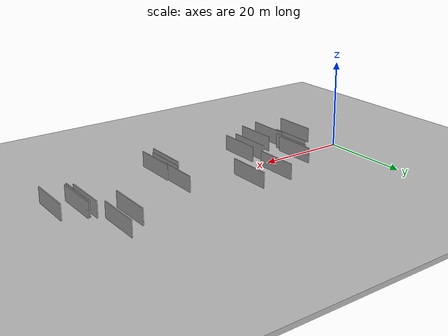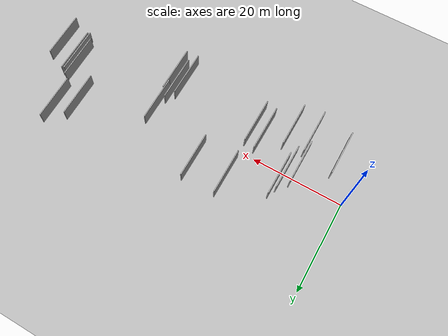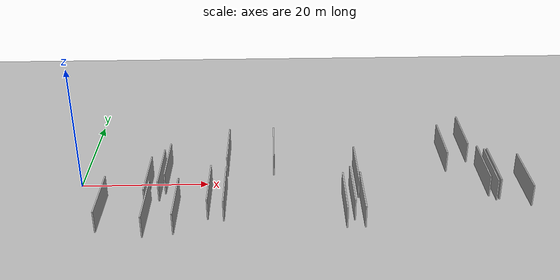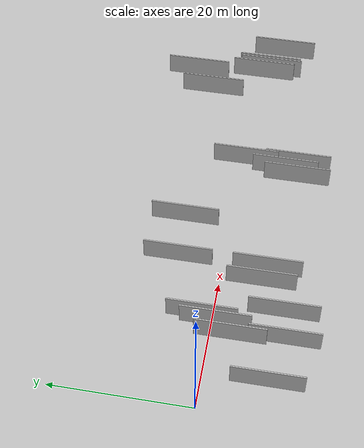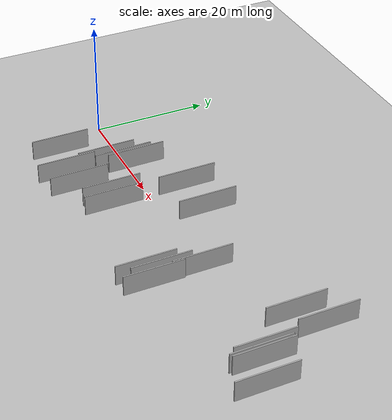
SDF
<?xml version="1.0" encoding="utf-8"?>

<sdf version="1.6">

   <world name="default">

      <gui fullscreen="0">

         <camera name="user_camera">

            <pose>-15 0 4.57585 0 0 0</pose>

            <view_controller>orbit</view_controller>

         </camera>

      </gui>

      <scene>

         <sky>

           <clouds>

             <speed>12</speed>

           </clouds>

         </sky>

         <ambient>0.4 0.4 0.4 1</ambient>

         <background>0.7 0.7 0.7 1</background>

         <shadows>1</shadows>

      </scene>

      <gravity>0 0 -9.8066</gravity>

      <magnetic_field>6e-06 2.3e-05 -4.2e-05</magnetic_field>

      <physics default="0" name="default_physics" type="ode">

         <ode>

            <solver>

               <type>quick</type>

               <iters>10</iters>

               <sor>1.0</sor>

               <use_dynamic_moi_rescaling>0</use_dynamic_moi_rescaling>

            </solver>

            <constraints>

               <cfm>0</cfm>

               <erp>0.2</erp>

               <contact_max_correcting_vel>100</contact_max_correcting_vel>

               <contact_surface_layer>0.001</contact_surface_layer>

            </constraints>

         </ode>

         <max_step_size>0.004</max_step_size>

         <real_time_factor>1</real_time_factor>

         <real_time_update_rate>250</real_time_update_rate>

      </physics>

      <light name="sun" type="directional">

         <cast_shadows>1</cast_shadows>

         <pose>0 0 10 0 0 0</pose>

         <diffuse>0.8 0.8 0.8 1</diffuse>

         <specular>0.2 0.2 0.2 1</specular>

         <attenuation>

            <range>1000</range>

            <constant>0.9</constant>

            <linear>0.01</linear>

            <quadratic>0.001</quadratic>

         </attenuation>

         <direction>-0.5 0.1 -0.9</direction>

      </light>

      <include>

         <name>ground_plane_1</name>

         <uri>model://HANNAS_ground_plane</uri>

         <pose>0 0 0  0 0 0</pose>

      </include>

      <include>

         <name>ground_plane_2</name>

         <uri>model://HANNAS_ground_plane</uri>

         <pose>100 0 0  0 0 0</pose>

      </include>

      <model name="HANNAS_wall_1">

         <static>1</static>

         <pose frame="">23.0872 6.4572 0.0 0.000000 0.000000 1.570796</pose>

         <link name="link">

            <pose frame="">0 0 2.00 0 0 0</pose>

            <collision name="collision">

               <geometry>

                  <box>

                     <size>10.00 0.2 4.00</size>

                  </box>

               </geometry>

               <max_contacts>10</max_contacts>

               <surface>

                  <contact>

                     <ode/>

                  </contact>

                  <bounce/>

                  <friction>

                     <torsional>

                        <ode/>

                     </torsional>

                     <ode/>

                  </friction>

               </surface>

            </collision>

            <visual name="visual">

               <cast_shadows>0</cast_shadows>

               <geometry>

                  <box>

                     <size>10.00 0.2 4.00</size>

                  </box>

               </geometry>

               <material>

                  <script>

                     <uri>model://HANNAS_wall/materials/scripts</uri>

                     <uri>model://HANNAS_wall/materials/textures</uri>

                     <name>vrc/HANNAS_wall</name>

                  </script>

               </material>

            </visual>

            <self_collide>0</self_collide>

            <enable_wind>0</enable_wind>

            <kinematic>0</kinematic>

         </link>

      </model>

      <model name="HANNAS_wall_2">

         <static>1</static>

         <pose frame="">58.5784 7.0230 0.0 0.000000 0.000000 1.570796</pose>

         <link name="link">

            <pose frame="">0 0 2.00 0 0 0</pose>

            <collision name="collision">

               <geometry>

                  <box>

                     <size>10.00 0.2 4.00</size>

                  </box>

               </geometry>

               <max_contacts>10</max_contacts>

               <surface>

                  <contact>

                     <ode/>

                  </contact>

                  <bounce/>

                  <friction>

                     <torsional>

                        <ode/>

                     </torsional>

                     <ode/>

                  </friction>

               </surface>

            </collision>

            <visual name="visual">

               <cast_shadows>0</cast_shadows>

               <geometry>

                  <box>

                     <size>10.00 0.2 4.00</size>

                  </box>

               </geometry>

               <material>

                  <script>

                     <uri>model://HANNAS_wall/materials/scripts</uri>

                     <uri>model://HANNAS_wall/materials/textures</uri>

                     <name>vrc/HANNAS_wall</name>

                  </script>

               </material>

            </visual>

            <self_collide>0</self_collide>

            <enable_wind>0</enable_wind>

            <kinematic>0</kinematic>

         </link>

      </model>

      <model name="HANNAS_wall_3">

         <static>1</static>

         <pose frame="">43.8865 -8.5590 0.0 0.000000 0.000000 1.570796</pose>

         <link name="link">

            <pose frame="">0 0 2.00 0 0 0</pose>

            <collision name="collision">

               <geometry>

                  <box>

                     <size>10.00 0.2 4.00</size>

                  </box>

               </geometry>

               <max_contacts>10</max_contacts>

               <surface>

                  <contact>

                     <ode/>

                  </contact>

                  <bounce/>

                  <friction>

                     <torsional>

                        <ode/>

                     </torsional>

                     <ode/>

                  </friction>

               </surface>

            </collision>

            <visual name="visual">

               <cast_shadows>0</cast_shadows>

               <geometry>

                  <box>

                     <size>10.00 0.2 4.00</size>

                  </box>

               </geometry>

               <material>

                  <script>

                     <uri>model://HANNAS_wall/materials/scripts</uri>

                     <uri>model://HANNAS_wall/materials/textures</uri>

                     <name>vrc/HANNAS_wall</name>

                  </script>

               </material>

            </visual>

            <self_collide>0</self_collide>

            <enable_wind>0</enable_wind>

            <kinematic>0</kinematic>

         </link>

      </model>

      <model name="HANNAS_wall_4">

         <static>1</static>

         <pose frame="">64.7438 -1.8446 0.0 0.000000 0.000000 1.570796</pose>

         <link name="link">

            <pose frame="">0 0 2.00 0 0 0</pose>

            <collision name="collision">

               <geometry>

                  <box>

                     <size>10.00 0.2 4.00</size>

                  </box>

               </geometry>

               <max_contacts>10</max_contacts>

               <surface>

                  <contact>

                     <ode/>

                  </contact>

                  <bounce/>

                  <friction>

                     <torsional>

                        <ode/>

                     </torsional>

                     <ode/>

                  </friction>

               </surface>

            </collision>

            <visual name="visual">

               <cast_shadows>0</cast_shadows>

               <geometry>

                  <box>

                     <size>10.00 0.2 4.00</size>

                  </box>

               </geometry>

               <material>

                  <script>

                     <uri>model://HANNAS_wall/materials/scripts</uri>

                     <uri>model://HANNAS_wall/materials/textures</uri>

                     <name>vrc/HANNAS_wall</name>

                  </script>

               </material>

            </visual>

            <self_collide>0</self_collide>

            <enable_wind>0</enable_wind>

            <kinematic>0</kinematic>

         </link>

      </model>

      <model name="HANNAS_wall_5">

         <static>1</static>

         <pose frame="">11.6194 -10.2387 0.0 0.000000 0.000000 1.570796</pose>

         <link name="link">

            <pose frame="">0 0 2.00 0 0 0</pose>

            <collision name="collision">

               <geometry>

                  <box>

                     <size>10.00 0.2 4.00</size>

                  </box>

               </geometry>

               <max_contacts>10</max_contacts>

               <surface>

                  <contact>

                     <ode/>

                  </contact>

                  <bounce/>

                  <friction>

                     <torsional>

                        <ode/>

                     </torsional>

                     <ode/>

                  </friction>

               </surface>

            </collision>

            <visual name="visual">

               <cast_shadows>0</cast_shadows>

               <geometry>

                  <box>

                     <size>10.00 0.2 4.00</size>

                  </box>

               </geometry>

               <material>

                  <script>

                     <uri>model://HANNAS_wall/materials/scripts</uri>

                     <uri>model://HANNAS_wall/materials/textures</uri>

                     <name>vrc/HANNAS_wall</name>

                  </script>

               </material>

            </visual>

            <self_collide>0</self_collide>

            <enable_wind>0</enable_wind>

            <kinematic>0</kinematic>

         </link>

      </model>

      <model name="HANNAS_wall_6">

         <static>1</static>

         <pose frame="">41.1895 -8.6862 0.0 0.000000 0.000000 1.570796</pose>

         <link name="link">

            <pose frame="">0 0 2.00 0 0 0</pose>

            <collision name="collision">

               <geometry>

                  <box>

                     <size>10.00 0.2 4.00</size>

                  </box>

               </geometry>

               <max_contacts>10</max_contacts>

               <surface>

                  <contact>

                     <ode/>

                  </contact>

                  <bounce/>

                  <friction>

                     <torsional>

                        <ode/>

                     </torsional>

                     <ode/>

                  </friction>

               </surface>

            </collision>

            <visual name="visual">

               <cast_shadows>0</cast_shadows>

               <geometry>

                  <box>

                     <size>10.00 0.2 4.00</size>

                  </box>

               </geometry>

               <material>

                  <script>

                     <uri>model://HANNAS_wall/materials/scripts</uri>

                     <uri>model://HANNAS_wall/materials/textures</uri>

                     <name>vrc/HANNAS_wall</name>

                  </script>

               </material>

            </visual>

            <self_collide>0</self_collide>

            <enable_wind>0</enable_wind>

            <kinematic>0</kinematic>

         </link>

      </model>

      <model name="HANNAS_wall_7">

         <static>1</static>

         <pose frame="">11.0862 -2.8782 0.0 0.000000 0.000000 1.570796</pose>

         <link name="link">

            <pose frame="">0 0 2.00 0 0 0</pose>

            <collision name="collision">

               <geometry>

                  <box>

                     <size>10.00 0.2 4.00</size>

                  </box>

               </geometry>

               <max_contacts>10</max_contacts>

               <surface>

                  <contact>

                     <ode/>

                  </contact>

                  <bounce/>

                  <friction>

                     <torsional>

                        <ode/>

                     </torsional>

                     <ode/>

                  </friction>

               </surface>

            </collision>

            <visual name="visual">

               <cast_shadows>0</cast_shadows>

               <geometry>

                  <box>

                     <size>10.00 0.2 4.00</size>

                  </box>

               </geometry>

               <material>

                  <script>

                     <uri>model://HANNAS_wall/materials/scripts</uri>

                     <uri>model://HANNAS_wall/materials/textures</uri>

                     <name>vrc/HANNAS_wall</name>

                  </script>

               </material>

            </visual>

            <self_collide>0</self_collide>

            <enable_wind>0</enable_wind>

            <kinematic>0</kinematic>

         </link>

      </model>

      <model name="HANNAS_wall_8">

         <static>1</static>

         <pose frame="">69.6806 -3.5806 0.0 0.000000 0.000000 1.570796</pose>

         <link name="link">

            <pose frame="">0 0 2.00 0 0 0</pose>

            <collision name="collision">

               <geometry>

                  <box>

                     <size>10.00 0.2 4.00</size>

                  </box>

               </geometry>

               <max_contacts>10</max_contacts>

               <surface>

                  <contact>

                     <ode/>

                  </contact>

                  <bounce/>

                  <friction>

                     <torsional>

                        <ode/>

                     </torsional>

                     <ode/>

                  </friction>

               </surface>

            </collision>

            <visual name="visual">

               <cast_shadows>0</cast_shadows>

               <geometry>

                  <box>

                     <size>10.00 0.2 4.00</size>

                  </box>

               </geometry>

               <material>

                  <script>

                     <uri>model://HANNAS_wall/materials/scripts</uri>

                     <uri>model://HANNAS_wall/materials/textures</uri>

                     <name>vrc/HANNAS_wall</name>

                  </script>

               </material>

            </visual>

            <self_collide>0</self_collide>

            <enable_wind>0</enable_wind>

            <kinematic>0</kinematic>

         </link>

      </model>

      <model name="HANNAS_wall_9">

         <static>1</static>

         <pose frame="">63.8043 -0.7299 0.0 0.000000 0.000000 1.570796</pose>

         <link name="link">

            <pose frame="">0 0 2.00 0 0 0</pose>

            <collision name="collision">

               <geometry>

                  <box>

                     <size>10.00 0.2 4.00</size>

                  </box>

               </geometry>

               <max_contacts>10</max_contacts>

               <surface>

                  <contact>

                     <ode/>

                  </contact>

                  <bounce/>

                  <friction>

                     <torsional>

                        <ode/>

                     </torsional>

                     <ode/>

                  </friction>

               </surface>

            </collision>

            <visual name="visual">

               <cast_shadows>0</cast_shadows>

               <geometry>

                  <box>

                     <size>10.00 0.2 4.00</size>

                  </box>

               </geometry>

               <material>

                  <script>

                     <uri>model://HANNAS_wall/materials/scripts</uri>

                     <uri>model://HANNAS_wall/materials/textures</uri>

                     <name>vrc/HANNAS_wall</name>

                  </script>

               </material>

            </visual>

            <self_collide>0</self_collide>

            <enable_wind>0</enable_wind>

            <kinematic>0</kinematic>

         </link>

      </model>

      <model name="HANNAS_wall_10">

         <static>1</static>

         <pose frame="">20.7131 -5.8970 0.0 0.000000 0.000000 1.570796</pose>

         <link name="link">

            <pose frame="">0 0 2.00 0 0 0</pose>

            <collision name="collision">

               <geometry>

                  <box>

                     <size>10.00 0.2 4.00</size>

                  </box>

               </geometry>

               <max_contacts>10</max_contacts>

               <surface>

                  <contact>

                     <ode/>

                  </contact>

                  <bounce/>

                  <friction>

                     <torsional>

                        <ode/>

                     </torsional>

                     <ode/>

                  </friction>

               </surface>

            </collision>

            <visual name="visual">

               <cast_shadows>0</cast_shadows>

               <geometry>

                  <box>

                     <size>10.00 0.2 4.00</size>

                  </box>

               </geometry>

               <material>

                  <script>

                     <uri>model://HANNAS_wall/materials/scripts</uri>

                     <uri>model://HANNAS_wall/materials/textures</uri>

                     <name>vrc/HANNAS_wall</name>

                  </script>

               </material>

            </visual>

            <self_collide>0</self_collide>

            <enable_wind>0</enable_wind>

            <kinematic>0</kinematic>

         </link>

      </model>

      <model name="HANNAS_wall_11">

         <static>1</static>

         <pose frame="">13.6927 1.4413 0.0 0.000000 0.000000 1.570796</pose>

         <link name="link">

            <pose frame="">0 0 2.00 0 0 0</pose>

            <collision name="collision">

               <geometry>

                  <box>

                     <size>10.00 0.2 4.00</size>

                  </box>

               </geometry>

               <max_contacts>10</max_contacts>

               <surface>

                  <contact>

                     <ode/>

                  </contact>

                  <bounce/>

                  <friction>

                     <torsional>

                        <ode/>

                     </torsional>

                     <ode/>

                  </friction>

               </surface>

            </collision>

            <visual name="visual">

               <cast_shadows>0</cast_shadows>

               <geometry>

                  <box>

                     <size>10.00 0.2 4.00</size>

                  </box>

               </geometry>

               <material>

                  <script>

                     <uri>model://HANNAS_wall/materials/scripts</uri>

                     <uri>model://HANNAS_wall/materials/textures</uri>

                     <name>vrc/HANNAS_wall</name>

                  </script>

               </material>

            </visual>

            <self_collide>0</self_collide>

            <enable_wind>0</enable_wind>

            <kinematic>0</kinematic>

         </link>

      </model>

      <model name="HANNAS_wall_12">

         <static>1</static>

         <pose frame="">15.9839 -9.6368 0.0 0.000000 0.000000 1.570796</pose>

         <link name="link">

            <pose frame="">0 0 2.00 0 0 0</pose>

            <collision name="collision">

               <geometry>

                  <box>

                     <size>10.00 0.2 4.00</size>

                  </box>

               </geometry>

               <max_contacts>10</max_contacts>

               <surface>

                  <contact>

                     <ode/>

                  </contact>

                  <bounce/>

                  <friction>

                     <torsional>

                        <ode/>

                     </torsional>

                     <ode/>

                  </friction>

               </surface>

            </collision>

            <visual name="visual">

               <cast_shadows>0</cast_shadows>

               <geometry>

                  <box>

                     <size>10.00 0.2 4.00</size>

                  </box>

               </geometry>

               <material>

                  <script>

                     <uri>model://HANNAS_wall/materials/scripts</uri>

                     <uri>model://HANNAS_wall/materials/textures</uri>

                     <name>vrc/HANNAS_wall</name>

                  </script>

               </material>

            </visual>

            <self_collide>0</self_collide>

            <enable_wind>0</enable_wind>

            <kinematic>0</kinematic>

         </link>

      </model>

      <model name="HANNAS_wall_13">

         <static>1</static>

         <pose frame="">23.1178 -6.4485 0.0 0.000000 0.000000 1.570796</pose>

         <link name="link">

            <pose frame="">0 0 2.00 0 0 0</pose>

            <collision name="collision">

               <geometry>

                  <box>

                     <size>10.00 0.2 4.00</size>

                  </box>

               </geometry>

               <max_contacts>10</max_contacts>

               <surface>

                  <contact>

                     <ode/>

                  </contact>

                  <bounce/>

                  <friction>

                     <torsional>

                        <ode/>

                     </torsional>

                     <ode/>

                  </friction>

               </surface>

            </collision>

            <visual name="visual">

               <cast_shadows>0</cast_shadows>

               <geometry>

                  <box>

                     <size>10.00 0.2 4.00</size>

                  </box>

               </geometry>

               <material>

                  <script>

                     <uri>model://HANNAS_wall/materials/scripts</uri>

                     <uri>model://HANNAS_wall/materials/textures</uri>

                     <name>vrc/HANNAS_wall</name>

                  </script>

               </material>

            </visual>

            <self_collide>0</self_collide>

            <enable_wind>0</enable_wind>

            <kinematic>0</kinematic>

         </link>

      </model>

      <model name="HANNAS_wall_14">

         <static>1</static>

         <pose frame="">43.5943 -0.5229 0.0 0.000000 0.000000 1.570796</pose>

         <link name="link">

            <pose frame="">0 0 2.00 0 0 0</pose>

            <collision name="collision">

               <geometry>

                  <box>

                     <size>10.00 0.2 4.00</size>

                  </box>

               </geometry>

               <max_contacts>10</max_contacts>

               <surface>

                  <contact>

                     <ode/>

                  </contact>

                  <bounce/>

                  <friction>

                     <torsional>

                        <ode/>

                     </torsional>

                     <ode/>

                  </friction>

               </surface>

            </collision>

            <visual name="visual">

               <cast_shadows>0</cast_shadows>

               <geometry>

                  <box>

                     <size>10.00 0.2 4.00</size>

                  </box>

               </geometry>

               <material>

                  <script>

                     <uri>model://HANNAS_wall/materials/scripts</uri>

                     <uri>model://HANNAS_wall/materials/textures</uri>

                     <name>vrc/HANNAS_wall</name>

                  </script>

               </material>

            </visual>

            <self_collide>0</self_collide>

            <enable_wind>0</enable_wind>

            <kinematic>0</kinematic>

         </link>

      </model>

      <model name="HANNAS_wall_15">

         <static>1</static>

         <pose frame="">65.2399 -1.6350 0.0 0.000000 0.000000 1.570796</pose>

         <link name="link">

            <pose frame="">0 0 2.00 0 0 0</pose>

            <collision name="collision">

               <geometry>

                  <box>

                     <size>10.00 0.2 4.00</size>

                  </box>

               </geometry>

               <max_contacts>10</max_contacts>

               <surface>

                  <contact>

                     <ode/>

                  </contact>

                  <bounce/>

                  <friction>

                     <torsional>

                        <ode/>

                     </torsional>

                     <ode/>

                  </friction>

               </surface>

            </collision>

            <visual name="visual">

               <cast_shadows>0</cast_shadows>

               <geometry>

                  <box>

                     <size>10.00 0.2 4.00</size>

                  </box>

               </geometry>

               <material>

                  <script>

                     <uri>model://HANNAS_wall/materials/scripts</uri>

                     <uri>model://HANNAS_wall/materials/textures</uri>

                     <name>vrc/HANNAS_wall</name>

                  </script>

               </material>

            </visual>

            <self_collide>0</self_collide>

            <enable_wind>0</enable_wind>

            <kinematic>0</kinematic>

         </link>

      </model>

      <model name="HANNAS_wall_16">

         <static>1</static>

         <pose frame="">4.6838 -8.7929 0.0 0.000000 0.000000 1.570796</pose>

         <link name="link">

            <pose frame="">0 0 2.00 0 0 0</pose>

            <collision name="collision">

               <geometry>

                  <box>

                     <size>10.00 0.2 4.00</size>

                  </box>

               </geometry>

               <max_contacts>10</max_contacts>

               <surface>

                  <contact>

                     <ode/>

                  </contact>

                  <bounce/>

                  <friction>

                     <torsional>

                        <ode/>

                     </torsional>

                     <ode/>

                  </friction>

               </surface>

            </collision>

            <visual name="visual">

               <cast_shadows>0</cast_shadows>

               <geometry>

                  <box>

                     <size>10.00 0.2 4.00</size>

                  </box>

               </geometry>

               <material>

                  <script>

                     <uri>model://HANNAS_wall/materials/scripts</uri>

                     <uri>model://HANNAS_wall/materials/textures</uri>

                     <name>vrc/HANNAS_wall</name>

                  </script>

               </material>

            </visual>

            <self_collide>0</self_collide>

            <enable_wind>0</enable_wind>

            <kinematic>0</kinematic>

         </link>

      </model>

      <model name="HANNAS_wall_17">

         <static>1</static>

         <pose frame="">12.9128 -0.5733 0.0 0.000000 0.000000 1.570796</pose>

         <link name="link">

            <pose frame="">0 0 2.00 0 0 0</pose>

            <collision name="collision">

               <geometry>

                  <box>

                     <size>10.00 0.2 4.00</size>

                  </box>

               </geometry>

               <max_contacts>10</max_contacts>

               <surface>

                  <contact>

                     <ode/>

                  </contact>

                  <bounce/>

                  <friction>

                     <torsional>

                        <ode/>

                     </torsional>

                     <ode/>

                  </friction>

               </surface>

            </collision>

            <visual name="visual">

               <cast_shadows>0</cast_shadows>

               <geometry>

                  <box>

                     <size>10.00 0.2 4.00</size>

                  </box>

               </geometry>

               <material>

                  <script>

                     <uri>model://HANNAS_wall/materials/scripts</uri>

                     <uri>model://HANNAS_wall/materials/textures</uri>

                     <name>vrc/HANNAS_wall</name>

                  </script>

               </material>

            </visual>

            <self_collide>0</self_collide>

            <enable_wind>0</enable_wind>

            <kinematic>0</kinematic>

         </link>

      </model>

      <model name="HANNAS_wall_18">

         <static>1</static>

         <pose frame="">30.5275 6.7041 0.0 0.000000 0.000000 1.570796</pose>

         <link name="link">

            <pose frame="">0 0 2.00 0 0 0</pose>

            <collision name="collision">

               <geometry>

                  <box>

                     <size>10.00 0.2 4.00</size>

                  </box>

               </geometry>

               <max_contacts>10</max_contacts>

               <surface>

                  <contact>

                     <ode/>

                  </contact>

                  <bounce/>

                  <friction>

                     <torsional>

                        <ode/>

                     </torsional>

                     <ode/>

                  </friction>

               </surface>

            </collision>

            <visual name="visual">

               <cast_shadows>0</cast_shadows>

               <geometry>

                  <box>

                     <size>10.00 0.2 4.00</size>

                  </box>

               </geometry>

               <material>

                  <script>

                     <uri>model://HANNAS_wall/materials/scripts</uri>

                     <uri>model://HANNAS_wall/materials/textures</uri>

                     <name>vrc/HANNAS_wall</name>

                  </script>

               </material>

            </visual>

            <self_collide>0</self_collide>

            <enable_wind>0</enable_wind>

            <kinematic>0</kinematic>

         </link>

      </model>

      <model name="HANNAS_wall_19">

         <static>1</static>

         <pose frame="">42.4820 -6.7375 0.0 0.000000 0.000000 1.570796</pose>

         <link name="link">

            <pose frame="">0 0 2.00 0 0 0</pose>

            <collision name="collision">

               <geometry>

                  <box>

                     <size>10.00 0.2 4.00</size>

                  </box>

               </geometry>

               <max_contacts>10</max_contacts>

               <surface>

                  <contact>

                     <ode/>

                  </contact>

                  <bounce/>

                  <friction>

                     <torsional>

                        <ode/>

                     </torsional>

                     <ode/>

                  </friction>

               </surface>

            </collision>

            <visual name="visual">

               <cast_shadows>0</cast_shadows>

               <geometry>

                  <box>

                     <size>10.00 0.2 4.00</size>

                  </box>

               </geometry>

               <material>

                  <script>

                     <uri>model://HANNAS_wall/materials/scripts</uri>

                     <uri>model://HANNAS_wall/materials/textures</uri>

                     <name>vrc/HANNAS_wall</name>

                  </script>

               </material>

            </visual>

            <self_collide>0</self_collide>

            <enable_wind>0</enable_wind>

            <kinematic>0</kinematic>

         </link>

      </model>

      <model name="HANNAS_wall_20">

         <static>1</static>

         <pose frame="">62.5171 10.0142 0.0 0.000000 0.000000 1.570796</pose>

         <link name="link">

            <pose frame="">0 0 2.00 0 0 0</pose>

            <collision name="collision">

               <geometry>

                  <box>

                     <size>10.00 0.2 4.00</size>

                  </box>

               </geometry>

               <max_contacts>10</max_contacts>

               <surface>

                  <contact>

                     <ode/>

                  </contact>

                  <bounce/>

                  <friction>

                     <torsional>

                        <ode/>

                     </torsional>

                     <ode/>

                  </friction>

               </surface>

            </collision>

            <visual name="visual">

               <cast_shadows>0</cast_shadows>

               <geometry>

                  <box>

                     <size>10.00 0.2 4.00</size>

                  </box>

               </geometry>

               <material>

                  <script>

                     <uri>model://HANNAS_wall/materials/scripts</uri>

                     <uri>model://HANNAS_wall/materials/textures</uri>

                     <name>vrc/HANNAS_wall</name>

                  </script>

               </material>

            </visual>

            <self_collide>0</self_collide>

            <enable_wind>0</enable_wind>

            <kinematic>0</kinematic>

         </link>

      </model>

   </world>

</sdf>

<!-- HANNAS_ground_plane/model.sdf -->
<sdf version="1.4">
<model name="HANNAS_ground_plane">
  <static>true</static>
    <link name="link">
      <collision name="collision">
        <geometry>
          <plane>
            <normal>0 0 1</normal>
            <size>1000 1000</size>
          </plane>
        </geometry>
        <surface>
          <friction>
            <ode>
              <mu>100</mu>
              <mu2>50</mu2>
            </ode>
          </friction>
        </surface>
      </collision>
      <visual name="visual">
        <cast_shadows>false</cast_shadows>
        <geometry>
          <plane>
            <normal>0 0 1</normal>
            <size>1000 1000</size>
          </plane>
        </geometry>
        <material>
          <script>
            <uri>model://HANNAS_ground_plane/materials/scripts/HANNAS_ground_plane.material</uri>
	    <uri>model://HANNAS_ground_plane/materials/textures</uri>
            <name>HANNASGroundPlane/Image</name>
          </script>
        </material>
      </visual>
    </link>
  </model>
</sdf>
